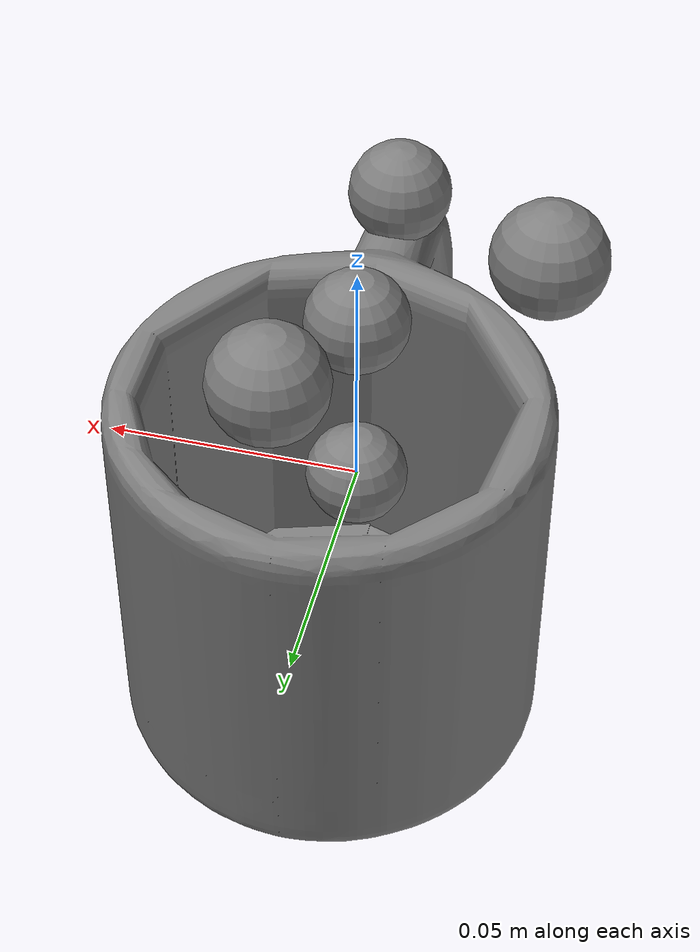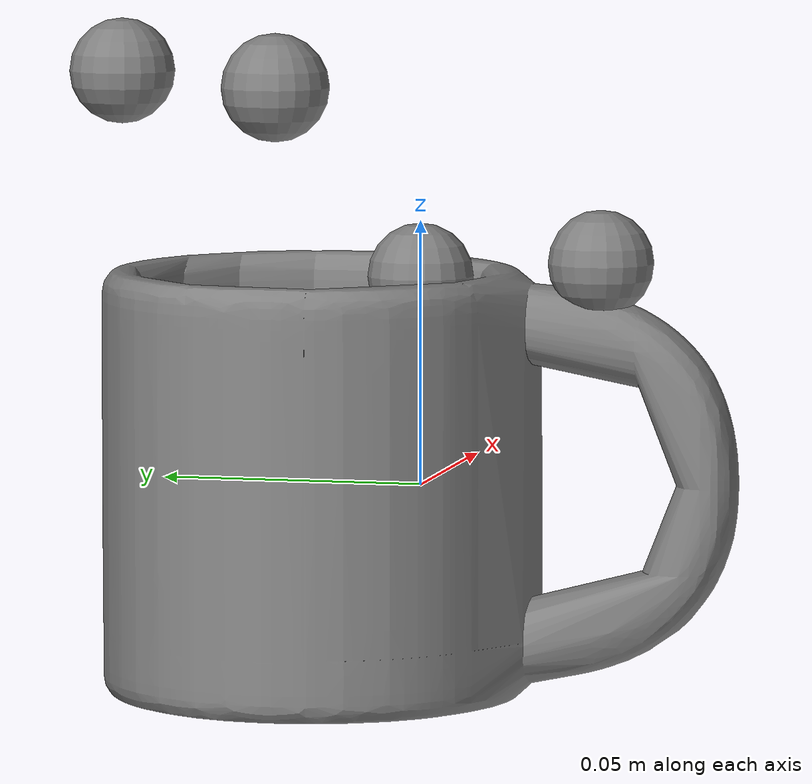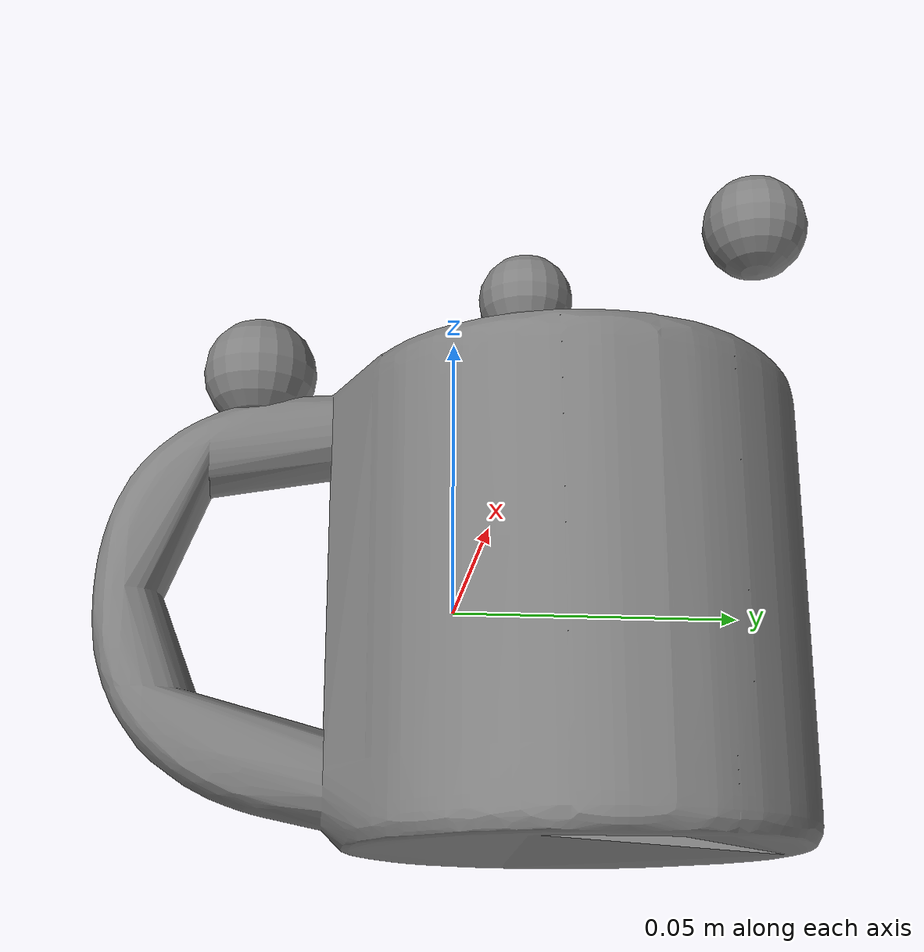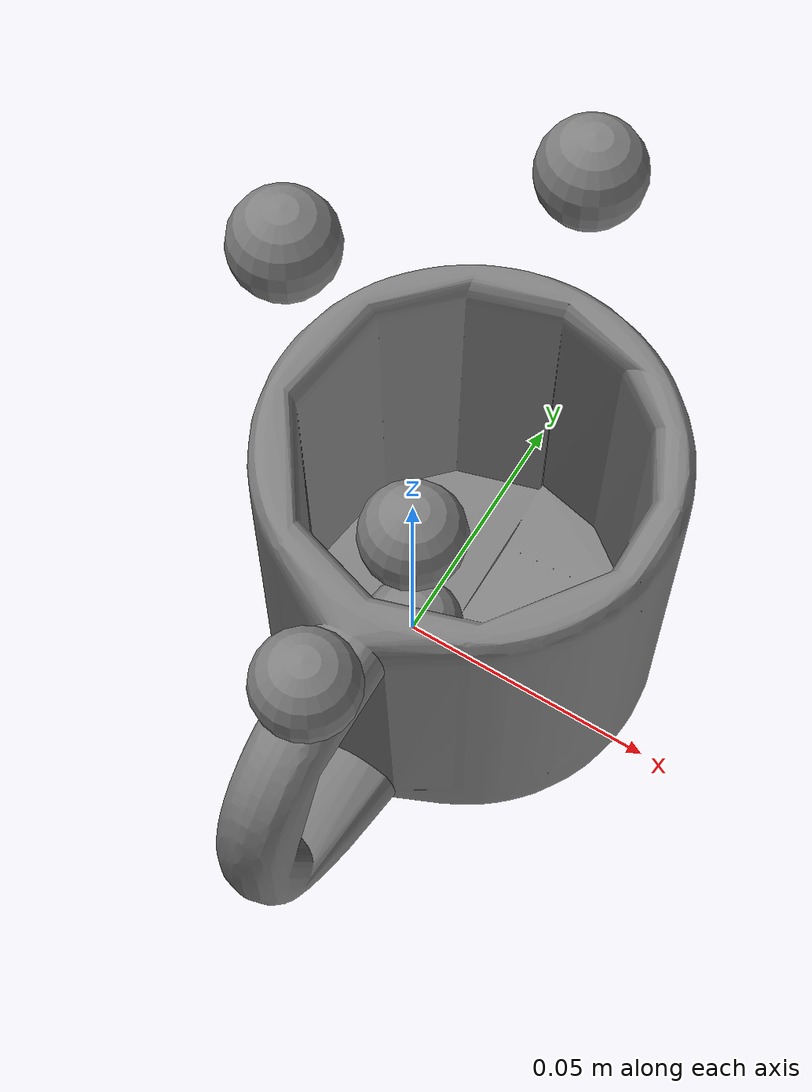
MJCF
<mujoco model="039_mug_7">
  <asset>
    <mesh name="039_mug_collision_7" file="039_mug_7.stl" scale="0.063 0.063 0.063"/>
  </asset>

  <worldbody>
<body name="039_mug_7">
  <geom name="039_mug_collision_7" type="mesh" mesh="039_mug_collision_7" />
  <site name="039_mug_7_keypoints_0" pos="0.0 0.057965859 0.07742668500000001" size="0.01"/>
  <site name="039_mug_7_keypoints_1" pos="-0.03651795 0.018917703 0.077414841" size="0.01"/>
  <site name="039_mug_7_keypoints_2" pos="0.0 -0.034626627 0.042759171" size="0.01"/>
  <site name="039_mug_7_keypoints_3" pos="0.0 0.0 0.0" size="0.01"/>
  <site name="039_mug_7_keypoints_4" pos="0.0 1.197e-05 0.039620574" size="0.01"/>
</body>
  </worldbody>
</mujoco>
